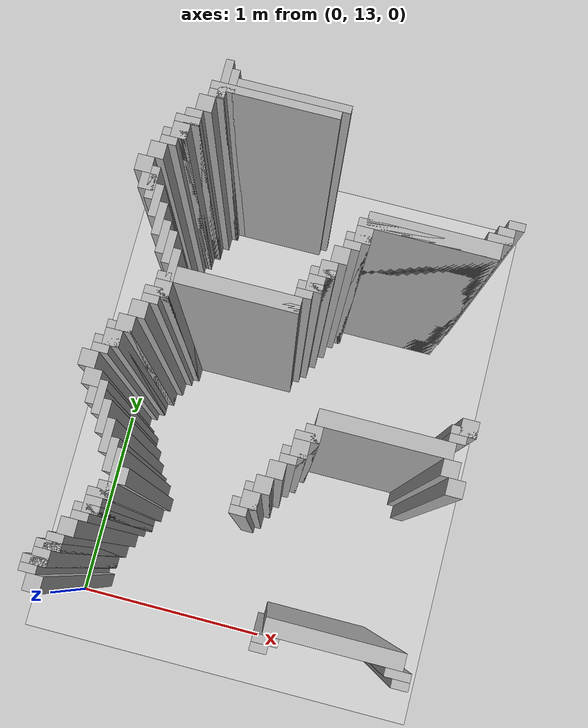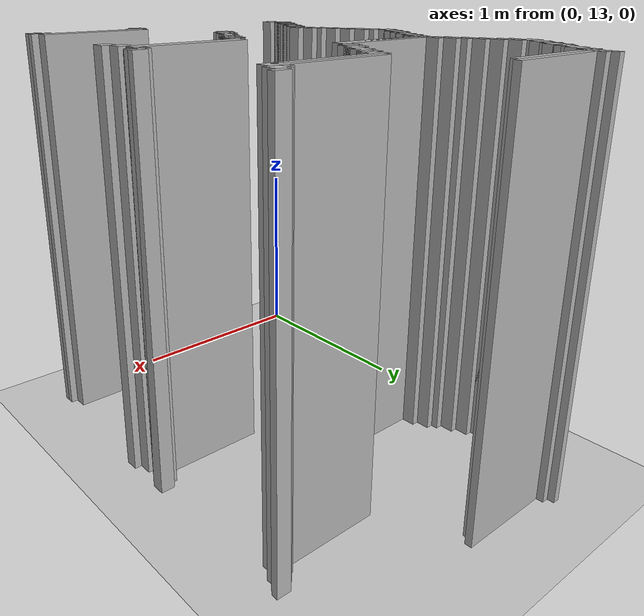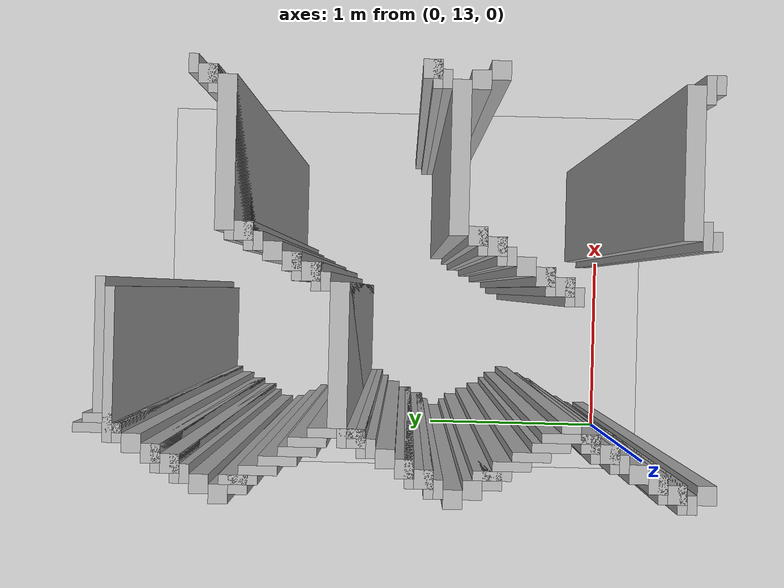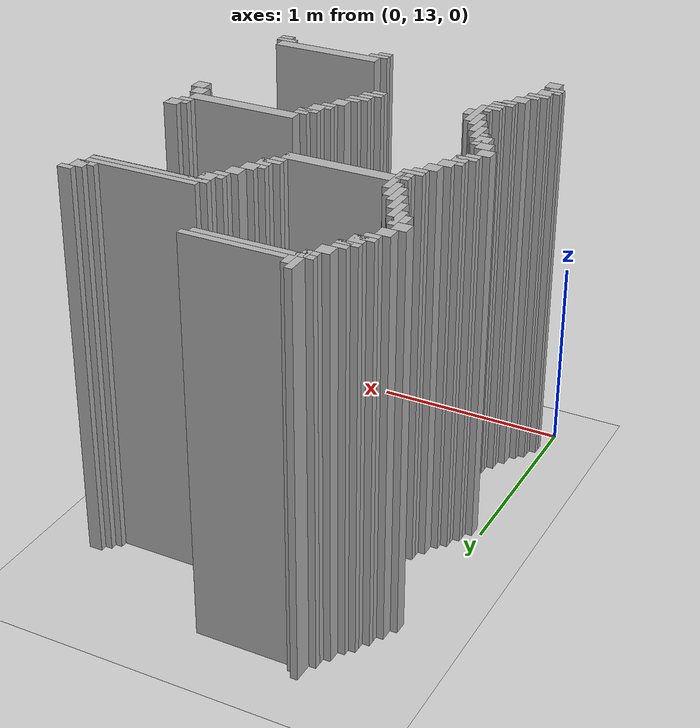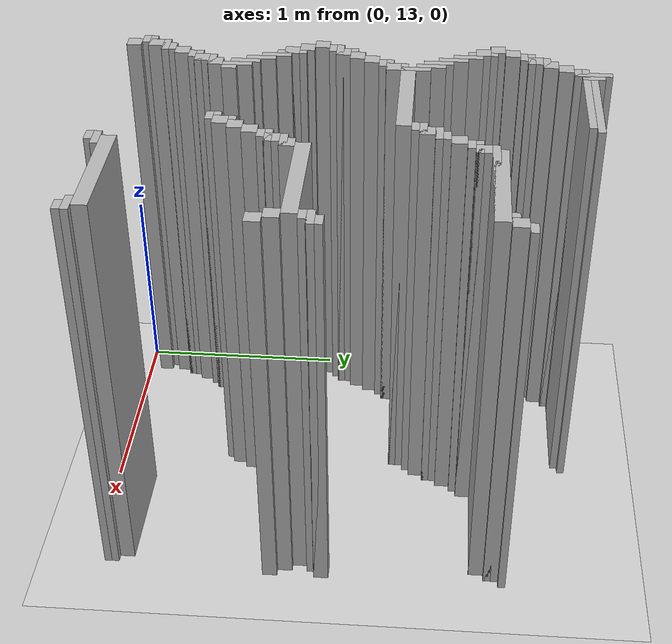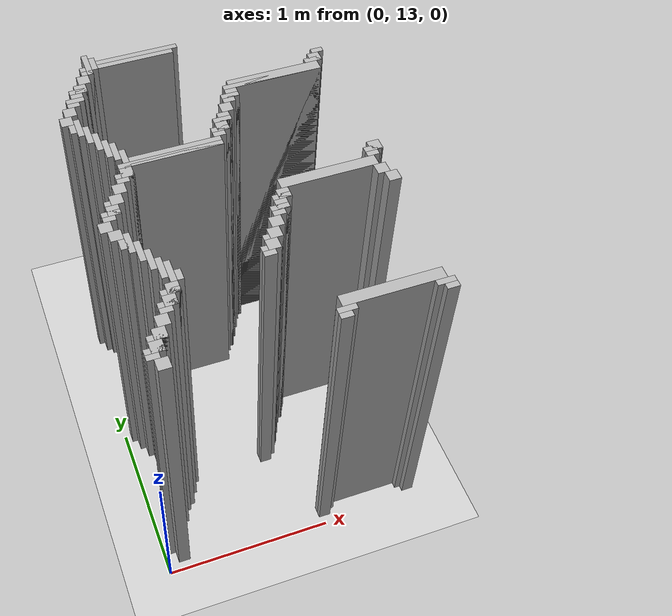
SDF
<sdf version="1.6">
 <world name="slam_world">
  <model name="ground_plane">
   <static>true</static>
   <link name="link">
    <collision name="collision">
     <geometry><plane><normal>0 0 1</normal><size>100 100</size></plane></geometry>
    </collision>
    <visual name="visual">
     <geometry><plane><normal>0 0 1</normal><size>100 100</size></plane></geometry>
     <material>
      <ambient>0.8 0.8 0.8 1</ambient>
      <diffuse>0.8 0.8 0.8 1</diffuse>
      <specular>0.8 0.8 0.8 1</specular>
     </material>
    </visual>
   </link>
  </model>
  <model name="wall_688">
   <static>true</static>
   <pose>0.29582366589327147 15.261020881670532 1.0 0 0 0</pose>
   <link name="link">
    <collision name="collision">
     <geometry><box><size>0.03480278422273782 0.17401392111368907 2.0</size></box></geometry>
    </collision>
    <visual name="visual">
     <geometry><box><size>0.03480278422273782 0.17401392111368907 2.0</size></box></geometry>
     <material><ambient>0.5 0.5 0.5 1</ambient><diffuse>0.7 0.7 0.7 1</diffuse></material>
    </visual>
   </link>
  </model>
  <model name="wall_704">
   <static>true</static>
   <pose>0.3306264501160093 15.261020881670532 1.0 0 0 0</pose>
   <link name="link">
    <collision name="collision">
     <geometry><box><size>0.03480278422273782 0.10440835266821345 2.0</size></box></geometry>
    </collision>
    <visual name="visual">
     <geometry><box><size>0.03480278422273782 0.10440835266821345 2.0</size></box></geometry>
     <material><ambient>0.5 0.5 0.5 1</ambient><diffuse>0.7 0.7 0.7 1</diffuse></material>
    </visual>
   </link>
  </model>
  <model name="wall_720">
   <static>true</static>
   <pose>0.5916473317865429 15.261020881670532 1.0 0 0 0</pose>
   <link name="link">
    <collision name="collision">
     <geometry><box><size>0.4872389791183295 0.03480278422273782 2.0</size></box></geometry>
    </collision>
    <visual name="visual">
     <geometry><box><size>0.4872389791183295 0.03480278422273782 2.0</size></box></geometry>
     <material><ambient>0.5 0.5 0.5 1</ambient><diffuse>0.7 0.7 0.7 1</diffuse></material>
    </visual>
   </link>
  </model>
  <model name="wall_730">
   <static>true</static>
   <pose>0.5220417633410672 15.226218097447795 1.0 0 0 0</pose>
   <link name="link">
    <collision name="collision">
     <geometry><box><size>0.5568445475638051 0.03480278422273782 2.0</size></box></geometry>
    </collision>
    <visual name="visual">
     <geometry><box><size>0.5568445475638051 0.03480278422273782 2.0</size></box></geometry>
     <material><ambient>0.5 0.5 0.5 1</ambient><diffuse>0.7 0.7 0.7 1</diffuse></material>
    </visual>
   </link>
  </model>
  <model name="wall_746">
   <static>true</static>
   <pose>0.27842227378190254 15.191415313225058 1.0 0 0 0</pose>
   <link name="link">
    <collision name="collision">
     <geometry><box><size>0.06960556844547564 0.03480278422273782 2.0</size></box></geometry>
    </collision>
    <visual name="visual">
     <geometry><box><size>0.06960556844547564 0.03480278422273782 2.0</size></box></geometry>
     <material><ambient>0.5 0.5 0.5 1</ambient><diffuse>0.7 0.7 0.7 1</diffuse></material>
    </visual>
   </link>
  </model>
  <model name="wall_763">
   <static>true</static>
   <pose>0.24361948955916474 15.139211136890951 1.0 0 0 0</pose>
   <link name="link">
    <collision name="collision">
     <geometry><box><size>0.06960556844547564 0.06960556844547564 2.0</size></box></geometry>
    </collision>
    <visual name="visual">
     <geometry><box><size>0.06960556844547564 0.06960556844547564 2.0</size></box></geometry>
     <material><ambient>0.5 0.5 0.5 1</ambient><diffuse>0.7 0.7 0.7 1</diffuse></material>
    </visual>
   </link>
  </model>
  <model name="wall_780">
   <static>true</static>
   <pose>0.2088167053364269 15.069605568445475 1.0 0 0 0</pose>
   <link name="link">
    <collision name="collision">
     <geometry><box><size>0.06960556844547564 0.06960556844547564 2.0</size></box></geometry>
    </collision>
    <visual name="visual">
     <geometry><box><size>0.06960556844547564 0.06960556844547564 2.0</size></box></geometry>
     <material><ambient>0.5 0.5 0.5 1</ambient><diffuse>0.7 0.7 0.7 1</diffuse></material>
    </visual>
   </link>
  </model>
  <model name="wall_797">
   <static>true</static>
   <pose>0.191415313225058 15.052204176334106 1.0 0 0 0</pose>
   <link name="link">
    <collision name="collision">
     <geometry><box><size>0.10440835266821345 0.03480278422273782 2.0</size></box></geometry>
    </collision>
    <visual name="visual">
     <geometry><box><size>0.10440835266821345 0.03480278422273782 2.0</size></box></geometry>
     <material><ambient>0.5 0.5 0.5 1</ambient><diffuse>0.7 0.7 0.7 1</diffuse></material>
    </visual>
   </link>
  </model>
  <model name="wall_814">
   <static>true</static>
   <pose>0.17401392111368907 15.0 1.0 0 0 0</pose>
   <link name="link">
    <collision name="collision">
     <geometry><box><size>0.06960556844547564 0.06960556844547564 2.0</size></box></geometry>
    </collision>
    <visual name="visual">
     <geometry><box><size>0.06960556844547564 0.06960556844547564 2.0</size></box></geometry>
     <material><ambient>0.5 0.5 0.5 1</ambient><diffuse>0.7 0.7 0.7 1</diffuse></material>
    </visual>
   </link>
  </model>
  <model name="wall_824">
   <static>true</static>
   <pose>0.15661252900232017 14.982598607888631 1.0 0 0 0</pose>
   <link name="link">
    <collision name="collision">
     <geometry><box><size>0.10440835266821345 0.03480278422273782 2.0</size></box></geometry>
    </collision>
    <visual name="visual">
     <geometry><box><size>0.10440835266821345 0.03480278422273782 2.0</size></box></geometry>
     <material><ambient>0.5 0.5 0.5 1</ambient><diffuse>0.7 0.7 0.7 1</diffuse></material>
    </visual>
   </link>
  </model>
  <model name="wall_841">
   <static>true</static>
   <pose>0.13921113689095127 14.947795823665892 1.0 0 0 0</pose>
   <link name="link">
    <collision name="collision">
     <geometry><box><size>0.06960556844547564 0.03480278422273782 2.0</size></box></geometry>
    </collision>
    <visual name="visual">
     <geometry><box><size>0.06960556844547564 0.03480278422273782 2.0</size></box></geometry>
     <material><ambient>0.5 0.5 0.5 1</ambient><diffuse>0.7 0.7 0.7 1</diffuse></material>
    </visual>
   </link>
  </model>
  <model name="wall_842">
   <static>true</static>
   <pose>1.6009280742459395 14.947795823665892 1.0 0 0 0</pose>
   <link name="link">
    <collision name="collision">
     <geometry><box><size>0.06960556844547564 0.03480278422273782 2.0</size></box></geometry>
    </collision>
    <visual name="visual">
     <geometry><box><size>0.06960556844547564 0.03480278422273782 2.0</size></box></geometry>
     <material><ambient>0.5 0.5 0.5 1</ambient><diffuse>0.7 0.7 0.7 1</diffuse></material>
    </visual>
   </link>
  </model>
  <model name="wall_850">
   <static>true</static>
   <pose>0.10440835266821345 14.895591647331786 1.0 0 0 0</pose>
   <link name="link">
    <collision name="collision">
     <geometry><box><size>0.06960556844547564 0.06960556844547564 2.0</size></box></geometry>
    </collision>
    <visual name="visual">
     <geometry><box><size>0.06960556844547564 0.06960556844547564 2.0</size></box></geometry>
     <material><ambient>0.5 0.5 0.5 1</ambient><diffuse>0.7 0.7 0.7 1</diffuse></material>
    </visual>
   </link>
  </model>
  <model name="wall_851">
   <static>true</static>
   <pose>1.5661252900232019 14.895591647331786 1.0 0 0 0</pose>
   <link name="link">
    <collision name="collision">
     <geometry><box><size>0.06960556844547564 0.06960556844547564 2.0</size></box></geometry>
    </collision>
    <visual name="visual">
     <geometry><box><size>0.06960556844547564 0.06960556844547564 2.0</size></box></geometry>
     <material><ambient>0.5 0.5 0.5 1</ambient><diffuse>0.7 0.7 0.7 1</diffuse></material>
    </visual>
   </link>
  </model>
  <model name="wall_867">
   <static>true</static>
   <pose>1.548723897911833 14.878190255220417 1.0 0 0 0</pose>
   <link name="link">
    <collision name="collision">
     <geometry><box><size>0.10440835266821345 0.03480278422273782 2.0</size></box></geometry>
    </collision>
    <visual name="visual">
     <geometry><box><size>0.10440835266821345 0.03480278422273782 2.0</size></box></geometry>
     <material><ambient>0.5 0.5 0.5 1</ambient><diffuse>0.7 0.7 0.7 1</diffuse></material>
    </visual>
   </link>
  </model>
  <model name="wall_874">
   <static>true</static>
   <pose>0.06960556844547564 14.825986078886311 1.0 0 0 0</pose>
   <link name="link">
    <collision name="collision">
     <geometry><box><size>0.06960556844547564 0.06960556844547564 2.0</size></box></geometry>
    </collision>
    <visual name="visual">
     <geometry><box><size>0.06960556844547564 0.06960556844547564 2.0</size></box></geometry>
     <material><ambient>0.5 0.5 0.5 1</ambient><diffuse>0.7 0.7 0.7 1</diffuse></material>
    </visual>
   </link>
  </model>
  <model name="wall_875">
   <static>true</static>
   <pose>1.2877030162412992 14.825986078886311 1.0 0 0 0</pose>
   <link name="link">
    <collision name="collision">
     <geometry><box><size>0.5568445475638051 0.06960556844547564 2.0</size></box></geometry>
    </collision>
    <visual name="visual">
     <geometry><box><size>0.5568445475638051 0.06960556844547564 2.0</size></box></geometry>
     <material><ambient>0.5 0.5 0.5 1</ambient><diffuse>0.7 0.7 0.7 1</diffuse></material>
    </visual>
   </link>
  </model>
  <model name="wall_890">
   <static>true</static>
   <pose>0.12180974477958237 14.756380510440835 1.0 0 0 0</pose>
   <link name="link">
    <collision name="collision">
     <geometry><box><size>0.03480278422273782 0.13921113689095127 2.0</size></box></geometry>
    </collision>
    <visual name="visual">
     <geometry><box><size>0.03480278422273782 0.13921113689095127 2.0</size></box></geometry>
     <material><ambient>0.5 0.5 0.5 1</ambient><diffuse>0.7 0.7 0.7 1</diffuse></material>
    </visual>
   </link>
  </model>
  <model name="wall_891">
   <static>true</static>
   <pose>1.2703016241299303 14.80858468677494 1.0 0 0 0</pose>
   <link name="link">
    <collision name="collision">
     <geometry><box><size>0.5916473317865429 0.03480278422273782 2.0</size></box></geometry>
    </collision>
    <visual name="visual">
     <geometry><box><size>0.5916473317865429 0.03480278422273782 2.0</size></box></geometry>
     <material><ambient>0.5 0.5 0.5 1</ambient><diffuse>0.7 0.7 0.7 1</diffuse></material>
    </visual>
   </link>
  </model>
  <model name="wall_903">
   <static>true</static>
   <pose>0.10440835266821345 14.756380510440835 1.0 0 0 0</pose>
   <link name="link">
    <collision name="collision">
     <geometry><box><size>0.06960556844547564 0.06960556844547564 2.0</size></box></geometry>
    </collision>
    <visual name="visual">
     <geometry><box><size>0.06960556844547564 0.06960556844547564 2.0</size></box></geometry>
     <material><ambient>0.5 0.5 0.5 1</ambient><diffuse>0.7 0.7 0.7 1</diffuse></material>
    </visual>
   </link>
  </model>
  <model name="wall_904">
   <static>true</static>
   <pose>1.0092807424593968 14.756380510440835 1.0 0 0 0</pose>
   <link name="link">
    <collision name="collision">
     <geometry><box><size>0.06960556844547564 0.06960556844547564 2.0</size></box></geometry>
    </collision>
    <visual name="visual">
     <geometry><box><size>0.06960556844547564 0.06960556844547564 2.0</size></box></geometry>
     <material><ambient>0.5 0.5 0.5 1</ambient><diffuse>0.7 0.7 0.7 1</diffuse></material>
    </visual>
   </link>
  </model>
  <model name="wall_918">
   <static>true</static>
   <pose>0.15661252900232017 14.68677494199536 1.0 0 0 0</pose>
   <link name="link">
    <collision name="collision">
     <geometry><box><size>0.03480278422273782 0.13921113689095127 2.0</size></box></geometry>
    </collision>
    <visual name="visual">
     <geometry><box><size>0.03480278422273782 0.13921113689095127 2.0</size></box></geometry>
     <material><ambient>0.5 0.5 0.5 1</ambient><diffuse>0.7 0.7 0.7 1</diffuse></material>
    </visual>
   </link>
  </model>
  <model name="wall_919">
   <static>true</static>
   <pose>0.9918793503480278 14.738979118329466 1.0 0 0 0</pose>
   <link name="link">
    <collision name="collision">
     <geometry><box><size>0.10440835266821345 0.03480278422273782 2.0</size></box></geometry>
    </collision>
    <visual name="visual">
     <geometry><box><size>0.10440835266821345 0.03480278422273782 2.0</size></box></geometry>
     <material><ambient>0.5 0.5 0.5 1</ambient><diffuse>0.7 0.7 0.7 1</diffuse></material>
    </visual>
   </link>
  </model>
  <model name="wall_933">
   <static>true</static>
   <pose>0.974477958236659 14.704176334106728 1.0 0 0 0</pose>
   <link name="link">
    <collision name="collision">
     <geometry><box><size>0.06960556844547564 0.03480278422273782 2.0</size></box></geometry>
    </collision>
    <visual name="visual">
     <geometry><box><size>0.06960556844547564 0.03480278422273782 2.0</size></box></geometry>
     <material><ambient>0.5 0.5 0.5 1</ambient><diffuse>0.7 0.7 0.7 1</diffuse></material>
    </visual>
   </link>
  </model>
  <model name="wall_941">
   <static>true</static>
   <pose>0.191415313225058 14.617169373549883 1.0 0 0 0</pose>
   <link name="link">
    <collision name="collision">
     <geometry><box><size>0.03480278422273782 0.13921113689095127 2.0</size></box></geometry>
    </collision>
    <visual name="visual">
     <geometry><box><size>0.03480278422273782 0.13921113689095127 2.0</size></box></geometry>
     <material><ambient>0.5 0.5 0.5 1</ambient><diffuse>0.7 0.7 0.7 1</diffuse></material>
    </visual>
   </link>
  </model>
  <model name="wall_942">
   <static>true</static>
   <pose>0.9396751740139211 14.65197215777262 1.0 0 0 0</pose>
   <link name="link">
    <collision name="collision">
     <geometry><box><size>0.06960556844547564 0.06960556844547564 2.0</size></box></geometry>
    </collision>
    <visual name="visual">
     <geometry><box><size>0.06960556844547564 0.06960556844547564 2.0</size></box></geometry>
     <material><ambient>0.5 0.5 0.5 1</ambient><diffuse>0.7 0.7 0.7 1</diffuse></material>
    </visual>
   </link>
  </model>
  <model name="wall_956">
   <static>true</static>
   <pose>0.2262180974477958 14.547563805104408 1.0 0 0 0</pose>
   <link name="link">
    <collision name="collision">
     <geometry><box><size>0.03480278422273782 0.13921113689095127 2.0</size></box></geometry>
    </collision>
    <visual name="visual">
     <geometry><box><size>0.03480278422273782 0.13921113689095127 2.0</size></box></geometry>
     <material><ambient>0.5 0.5 0.5 1</ambient><diffuse>0.7 0.7 0.7 1</diffuse></material>
    </visual>
   </link>
  </model>
  <model name="wall_957">
   <static>true</static>
   <pose>0.9048723897911832 14.582366589327146 1.0 0 0 0</pose>
   <link name="link">
    <collision name="collision">
     <geometry><box><size>0.06960556844547564 0.06960556844547564 2.0</size></box></geometry>
    </collision>
    <visual name="visual">
     <geometry><box><size>0.06960556844547564 0.06960556844547564 2.0</size></box></geometry>
     <material><ambient>0.5 0.5 0.5 1</ambient><diffuse>0.7 0.7 0.7 1</diffuse></material>
    </visual>
   </link>
  </model>
  <model name="wall_971">
   <static>true</static>
   <pose>0.2610208816705336 14.512761020881669 1.0 0 0 0</pose>
   <link name="link">
    <collision name="collision">
     <geometry><box><size>0.03480278422273782 0.13921113689095127 2.0</size></box></geometry>
    </collision>
    <visual name="visual">
     <geometry><box><size>0.03480278422273782 0.13921113689095127 2.0</size></box></geometry>
     <material><ambient>0.5 0.5 0.5 1</ambient><diffuse>0.7 0.7 0.7 1</diffuse></material>
    </visual>
   </link>
  </model>
  <model name="wall_972">
   <static>true</static>
   <pose>0.8874709976798143 14.564965197215777 1.0 0 0 0</pose>
   <link name="link">
    <collision name="collision">
     <geometry><box><size>0.10440835266821345 0.03480278422273782 2.0</size></box></geometry>
    </collision>
    <visual name="visual">
     <geometry><box><size>0.10440835266821345 0.03480278422273782 2.0</size></box></geometry>
     <material><ambient>0.5 0.5 0.5 1</ambient><diffuse>0.7 0.7 0.7 1</diffuse></material>
    </visual>
   </link>
  </model>
  <model name="wall_986">
   <static>true</static>
   <pose>0.8700696055684455 14.512761020881669 1.0 0 0 0</pose>
   <link name="link">
    <collision name="collision">
     <geometry><box><size>0.06960556844547564 0.06960556844547564 2.0</size></box></geometry>
    </collision>
    <visual name="visual">
     <geometry><box><size>0.06960556844547564 0.06960556844547564 2.0</size></box></geometry>
     <material><ambient>0.5 0.5 0.5 1</ambient><diffuse>0.7 0.7 0.7 1</diffuse></material>
    </visual>
   </link>
  </model>
  <model name="wall_992">
   <static>true</static>
   <pose>0.29582366589327147 14.408352668213457 1.0 0 0 0</pose>
   <link name="link">
    <collision name="collision">
     <geometry><box><size>0.03480278422273782 0.2088167053364269 2.0</size></box></geometry>
    </collision>
    <visual name="visual">
     <geometry><box><size>0.03480278422273782 0.2088167053364269 2.0</size></box></geometry>
     <material><ambient>0.5 0.5 0.5 1</ambient><diffuse>0.7 0.7 0.7 1</diffuse></material>
    </visual>
   </link>
  </model>
  <model name="wall_993">
   <static>true</static>
   <pose>0.8526682134570766 14.4953596287703 1.0 0 0 0</pose>
   <link name="link">
    <collision name="collision">
     <geometry><box><size>0.10440835266821345 0.03480278422273782 2.0</size></box></geometry>
    </collision>
    <visual name="visual">
     <geometry><box><size>0.10440835266821345 0.03480278422273782 2.0</size></box></geometry>
     <material><ambient>0.5 0.5 0.5 1</ambient><diffuse>0.7 0.7 0.7 1</diffuse></material>
    </visual>
   </link>
  </model>
  <model name="wall_1007">
   <static>true</static>
   <pose>0.8352668213457076 14.460556844547563 1.0 0 0 0</pose>
   <link name="link">
    <collision name="collision">
     <geometry><box><size>0.06960556844547564 0.03480278422273782 2.0</size></box></geometry>
    </collision>
    <visual name="visual">
     <geometry><box><size>0.06960556844547564 0.03480278422273782 2.0</size></box></geometry>
     <material><ambient>0.5 0.5 0.5 1</ambient><diffuse>0.7 0.7 0.7 1</diffuse></material>
    </visual>
   </link>
  </model>
  <model name="wall_1013">
   <static>true</static>
   <pose>0.574245939675174 14.408352668213457 1.0 0 0 0</pose>
   <link name="link">
    <collision name="collision">
     <geometry><box><size>0.5220417633410672 0.06960556844547564 2.0</size></box></geometry>
    </collision>
    <visual name="visual">
     <geometry><box><size>0.5220417633410672 0.06960556844547564 2.0</size></box></geometry>
     <material><ambient>0.5 0.5 0.5 1</ambient><diffuse>0.7 0.7 0.7 1</diffuse></material>
    </visual>
   </link>
  </model>
  <model name="wall_1026">
   <static>true</static>
   <pose>0.5394431554524362 14.390951276102088 1.0 0 0 0</pose>
   <link name="link">
    <collision name="collision">
     <geometry><box><size>0.5916473317865429 0.03480278422273782 2.0</size></box></geometry>
    </collision>
    <visual name="visual">
     <geometry><box><size>0.5916473317865429 0.03480278422273782 2.0</size></box></geometry>
     <material><ambient>0.5 0.5 0.5 1</ambient><diffuse>0.7 0.7 0.7 1</diffuse></material>
    </visual>
   </link>
  </model>
  <model name="wall_1038">
   <static>true</static>
   <pose>0.27842227378190254 14.33874709976798 1.0 0 0 0</pose>
   <link name="link">
    <collision name="collision">
     <geometry><box><size>0.06960556844547564 0.06960556844547564 2.0</size></box></geometry>
    </collision>
    <visual name="visual">
     <geometry><box><size>0.06960556844547564 0.06960556844547564 2.0</size></box></geometry>
     <material><ambient>0.5 0.5 0.5 1</ambient><diffuse>0.7 0.7 0.7 1</diffuse></material>
    </visual>
   </link>
  </model>
  <model name="wall_1051">
   <static>true</static>
   <pose>0.2610208816705336 14.321345707656612 1.0 0 0 0</pose>
   <link name="link">
    <collision name="collision">
     <geometry><box><size>0.10440835266821345 0.03480278422273782 2.0</size></box></geometry>
    </collision>
    <visual name="visual">
     <geometry><box><size>0.10440835266821345 0.03480278422273782 2.0</size></box></geometry>
     <material><ambient>0.5 0.5 0.5 1</ambient><diffuse>0.7 0.7 0.7 1</diffuse></material>
    </visual>
   </link>
  </model>
  <model name="wall_1064">
   <static>true</static>
   <pose>0.24361948955916474 14.286542923433874 1.0 0 0 0</pose>
   <link name="link">
    <collision name="collision">
     <geometry><box><size>0.06960556844547564 0.03480278422273782 2.0</size></box></geometry>
    </collision>
    <visual name="visual">
     <geometry><box><size>0.06960556844547564 0.03480278422273782 2.0</size></box></geometry>
     <material><ambient>0.5 0.5 0.5 1</ambient><diffuse>0.7 0.7 0.7 1</diffuse></material>
    </visual>
   </link>
  </model>
  <model name="wall_1072">
   <static>true</static>
   <pose>0.2088167053364269 14.234338747099768 1.0 0 0 0</pose>
   <link name="link">
    <collision name="collision">
     <geometry><box><size>0.06960556844547564 0.06960556844547564 2.0</size></box></geometry>
    </collision>
    <visual name="visual">
     <geometry><box><size>0.06960556844547564 0.06960556844547564 2.0</size></box></geometry>
     <material><ambient>0.5 0.5 0.5 1</ambient><diffuse>0.7 0.7 0.7 1</diffuse></material>
    </visual>
   </link>
  </model>
  <model name="wall_1085">
   <static>true</static>
   <pose>0.17401392111368907 14.164733178654291 1.0 0 0 0</pose>
   <link name="link">
    <collision name="collision">
     <geometry><box><size>0.06960556844547564 0.06960556844547564 2.0</size></box></geometry>
    </collision>
    <visual name="visual">
     <geometry><box><size>0.06960556844547564 0.06960556844547564 2.0</size></box></geometry>
     <material><ambient>0.5 0.5 0.5 1</ambient><diffuse>0.7 0.7 0.7 1</diffuse></material>
    </visual>
   </link>
  </model>
  <model name="wall_1098">
   <static>true</static>
   <pose>0.15661252900232017 14.147331786542923 1.0 0 0 0</pose>
   <link name="link">
    <collision name="collision">
     <geometry><box><size>0.10440835266821345 0.03480278422273782 2.0</size></box></geometry>
    </collision>
    <visual name="visual">
     <geometry><box><size>0.10440835266821345 0.03480278422273782 2.0</size></box></geometry>
     <material><ambient>0.5 0.5 0.5 1</ambient><diffuse>0.7 0.7 0.7 1</diffuse></material>
    </visual>
   </link>
  </model>
  <model name="wall_1111">
   <static>true</static>
   <pose>0.13921113689095127 14.095127610208817 1.0 0 0 0</pose>
   <link name="link">
    <collision name="collision">
     <geometry><box><size>0.06960556844547564 0.06960556844547564 2.0</size></box></geometry>
    </collision>
    <visual name="visual">
     <geometry><box><size>0.06960556844547564 0.06960556844547564 2.0</size></box></geometry>
     <material><ambient>0.5 0.5 0.5 1</ambient><diffuse>0.7 0.7 0.7 1</diffuse></material>
    </visual>
   </link>
  </model>
  <model name="wall_1112">
   <static>true</static>
   <pose>1.6009280742459395 14.095127610208817 1.0 0 0 0</pose>
   <link name="link">
    <collision name="collision">
     <geometry><box><size>0.06960556844547564 0.06960556844547564 2.0</size></box></geometry>
    </collision>
    <visual name="visual">
     <geometry><box><size>0.06960556844547564 0.06960556844547564 2.0</size></box></geometry>
     <material><ambient>0.5 0.5 0.5 1</ambient><diffuse>0.7 0.7 0.7 1</diffuse></material>
    </visual>
   </link>
  </model>
  <model name="wall_1118">
   <static>true</static>
   <pose>0.12180974477958237 14.077726218097448 1.0 0 0 0</pose>
   <link name="link">
    <collision name="collision">
     <geometry><box><size>0.10440835266821345 0.03480278422273782 2.0</size></box></geometry>
    </collision>
    <visual name="visual">
     <geometry><box><size>0.10440835266821345 0.03480278422273782 2.0</size></box></geometry>
     <material><ambient>0.5 0.5 0.5 1</ambient><diffuse>0.7 0.7 0.7 1</diffuse></material>
    </visual>
   </link>
  </model>
  <model name="wall_1119">
   <static>true</static>
   <pose>1.5835266821345706 14.077726218097448 1.0 0 0 0</pose>
   <link name="link">
    <collision name="collision">
     <geometry><box><size>0.10440835266821345 0.03480278422273782 2.0</size></box></geometry>
    </collision>
    <visual name="visual">
     <geometry><box><size>0.10440835266821345 0.03480278422273782 2.0</size></box></geometry>
     <material><ambient>0.5 0.5 0.5 1</ambient><diffuse>0.7 0.7 0.7 1</diffuse></material>
    </visual>
   </link>
  </model>
  <model name="wall_1131">
   <static>true</static>
   <pose>0.10440835266821345 14.042923433874709 1.0 0 0 0</pose>
   <link name="link">
    <collision name="collision">
     <geometry><box><size>0.06960556844547564 0.03480278422273782 2.0</size></box></geometry>
    </collision>
    <visual name="visual">
     <geometry><box><size>0.06960556844547564 0.03480278422273782 2.0</size></box></geometry>
     <material><ambient>0.5 0.5 0.5 1</ambient><diffuse>0.7 0.7 0.7 1</diffuse></material>
    </visual>
   </link>
  </model>
  <model name="wall_1132">
   <static>true</static>
   <pose>1.5661252900232019 14.042923433874709 1.0 0 0 0</pose>
   <link name="link">
    <collision name="collision">
     <geometry><box><size>0.06960556844547564 0.03480278422273782 2.0</size></box></geometry>
    </collision>
    <visual name="visual">
     <geometry><box><size>0.06960556844547564 0.03480278422273782 2.0</size></box></geometry>
     <material><ambient>0.5 0.5 0.5 1</ambient><diffuse>0.7 0.7 0.7 1</diffuse></material>
    </visual>
   </link>
  </model>
  <model name="wall_1138">
   <static>true</static>
   <pose>0.06960556844547564 13.990719257540603 1.0 0 0 0</pose>
   <link name="link">
    <collision name="collision">
     <geometry><box><size>0.06960556844547564 0.06960556844547564 2.0</size></box></geometry>
    </collision>
    <visual name="visual">
     <geometry><box><size>0.06960556844547564 0.06960556844547564 2.0</size></box></geometry>
     <material><ambient>0.5 0.5 0.5 1</ambient><diffuse>0.7 0.7 0.7 1</diffuse></material>
    </visual>
   </link>
  </model>
  <model name="wall_1139">
   <static>true</static>
   <pose>1.2877030162412992 13.990719257540603 1.0 0 0 0</pose>
   <link name="link">
    <collision name="collision">
     <geometry><box><size>0.5568445475638051 0.06960556844547564 2.0</size></box></geometry>
    </collision>
    <visual name="visual">
     <geometry><box><size>0.5568445475638051 0.06960556844547564 2.0</size></box></geometry>
     <material><ambient>0.5 0.5 0.5 1</ambient><diffuse>0.7 0.7 0.7 1</diffuse></material>
    </visual>
   </link>
  </model>
  <model name="wall_1152">
   <static>true</static>
   <pose>0.10440835266821345 13.921113689095128 1.0 0 0 0</pose>
   <link name="link">
    <collision name="collision">
     <geometry><box><size>0.06960556844547564 0.06960556844547564 2.0</size></box></geometry>
    </collision>
    <visual name="visual">
     <geometry><box><size>0.06960556844547564 0.06960556844547564 2.0</size></box></geometry>
     <material><ambient>0.5 0.5 0.5 1</ambient><diffuse>0.7 0.7 0.7 1</diffuse></material>
    </visual>
   </link>
  </model>
  <model name="wall_1153">
   <static>true</static>
   <pose>1.0092807424593968 13.921113689095128 1.0 0 0 0</pose>
   <link name="link">
    <collision name="collision">
     <geometry><box><size>0.06960556844547564 0.06960556844547564 2.0</size></box></geometry>
    </collision>
    <visual name="visual">
     <geometry><box><size>0.06960556844547564 0.06960556844547564 2.0</size></box></geometry>
     <material><ambient>0.5 0.5 0.5 1</ambient><diffuse>0.7 0.7 0.7 1</diffuse></material>
    </visual>
   </link>
  </model>
  <model name="wall_1154">
   <static>true</static>
   <pose>1.5661252900232019 13.921113689095128 1.0 0 0 0</pose>
   <link name="link">
    <collision name="collision">
     <geometry><box><size>0.06960556844547564 0.06960556844547564 2.0</size></box></geometry>
    </collision>
    <visual name="visual">
     <geometry><box><size>0.06960556844547564 0.06960556844547564 2.0</size></box></geometry>
     <material><ambient>0.5 0.5 0.5 1</ambient><diffuse>0.7 0.7 0.7 1</diffuse></material>
    </visual>
   </link>
  </model>
  <model name="wall_1168">
   <static>true</static>
   <pose>0.15661252900232017 13.851508120649651 1.0 0 0 0</pose>
   <link name="link">
    <collision name="collision">
     <geometry><box><size>0.03480278422273782 0.13921113689095127 2.0</size></box></geometry>
    </collision>
    <visual name="visual">
     <geometry><box><size>0.03480278422273782 0.13921113689095127 2.0</size></box></geometry>
     <material><ambient>0.5 0.5 0.5 1</ambient><diffuse>0.7 0.7 0.7 1</diffuse></material>
    </visual>
   </link>
  </model>
  <model name="wall_1169">
   <static>true</static>
   <pose>0.9918793503480278 13.903712296983759 1.0 0 0 0</pose>
   <link name="link">
    <collision name="collision">
     <geometry><box><size>0.10440835266821345 0.03480278422273782 2.0</size></box></geometry>
    </collision>
    <visual name="visual">
     <geometry><box><size>0.10440835266821345 0.03480278422273782 2.0</size></box></geometry>
     <material><ambient>0.5 0.5 0.5 1</ambient><diffuse>0.7 0.7 0.7 1</diffuse></material>
    </visual>
   </link>
  </model>
  <model name="wall_1184">
   <static>true</static>
   <pose>0.13921113689095127 13.851508120649651 1.0 0 0 0</pose>
   <link name="link">
    <collision name="collision">
     <geometry><box><size>0.06960556844547564 0.06960556844547564 2.0</size></box></geometry>
    </collision>
    <visual name="visual">
     <geometry><box><size>0.06960556844547564 0.06960556844547564 2.0</size></box></geometry>
     <material><ambient>0.5 0.5 0.5 1</ambient><diffuse>0.7 0.7 0.7 1</diffuse></material>
    </visual>
   </link>
  </model>
  <model name="wall_1185">
   <static>true</static>
   <pose>0.974477958236659 13.851508120649651 1.0 0 0 0</pose>
   <link name="link">
    <collision name="collision">
     <geometry><box><size>0.06960556844547564 0.06960556844547564 2.0</size></box></geometry>
    </collision>
    <visual name="visual">
     <geometry><box><size>0.06960556844547564 0.06960556844547564 2.0</size></box></geometry>
     <material><ambient>0.5 0.5 0.5 1</ambient><diffuse>0.7 0.7 0.7 1</diffuse></material>
    </visual>
   </link>
  </model>
  <model name="wall_1186">
   <static>true</static>
   <pose>1.6009280742459395 13.851508120649651 1.0 0 0 0</pose>
   <link name="link">
    <collision name="collision">
     <geometry><box><size>0.06960556844547564 0.06960556844547564 2.0</size></box></geometry>
    </collision>
    <visual name="visual">
     <geometry><box><size>0.06960556844547564 0.06960556844547564 2.0</size></box></geometry>
     <material><ambient>0.5 0.5 0.5 1</ambient><diffuse>0.7 0.7 0.7 1</diffuse></material>
    </visual>
   </link>
  </model>
  <model name="wall_1200">
   <static>true</static>
   <pose>0.191415313225058 13.781902552204176 1.0 0 0 0</pose>
   <link name="link">
    <collision name="collision">
     <geometry><box><size>0.03480278422273782 0.13921113689095127 2.0</size></box></geometry>
    </collision>
    <visual name="visual">
     <geometry><box><size>0.03480278422273782 0.13921113689095127 2.0</size></box></geometry>
     <material><ambient>0.5 0.5 0.5 1</ambient><diffuse>0.7 0.7 0.7 1</diffuse></material>
    </visual>
   </link>
  </model>
  <model name="wall_1201">
   <static>true</static>
   <pose>0.95707656612529 13.834106728538282 1.0 0 0 0</pose>
   <link name="link">
    <collision name="collision">
     <geometry><box><size>0.10440835266821345 0.03480278422273782 2.0</size></box></geometry>
    </collision>
    <visual name="visual">
     <geometry><box><size>0.10440835266821345 0.03480278422273782 2.0</size></box></geometry>
     <material><ambient>0.5 0.5 0.5 1</ambient><diffuse>0.7 0.7 0.7 1</diffuse></material>
    </visual>
   </link>
  </model>
  <model name="wall_1216">
   <static>true</static>
   <pose>0.9396751740139211 13.799303944315545 1.0 0 0 0</pose>
   <link name="link">
    <collision name="collision">
     <geometry><box><size>0.06960556844547564 0.03480278422273782 2.0</size></box></geometry>
    </collision>
    <visual name="visual">
     <geometry><box><size>0.06960556844547564 0.03480278422273782 2.0</size></box></geometry>
     <material><ambient>0.5 0.5 0.5 1</ambient><diffuse>0.7 0.7 0.7 1</diffuse></material>
    </visual>
   </link>
  </model>
  <model name="wall_1224">
   <static>true</static>
   <pose>0.2262180974477958 13.7122969837587 1.0 0 0 0</pose>
   <link name="link">
    <collision name="collision">
     <geometry><box><size>0.03480278422273782 0.13921113689095127 2.0</size></box></geometry>
    </collision>
    <visual name="visual">
     <geometry><box><size>0.03480278422273782 0.13921113689095127 2.0</size></box></geometry>
     <material><ambient>0.5 0.5 0.5 1</ambient><diffuse>0.7 0.7 0.7 1</diffuse></material>
    </visual>
   </link>
  </model>
  <model name="wall_1225">
   <static>true</static>
   <pose>0.9048723897911832 13.747099767981437 1.0 0 0 0</pose>
   <link name="link">
    <collision name="collision">
     <geometry><box><size>0.06960556844547564 0.06960556844547564 2.0</size></box></geometry>
    </collision>
    <visual name="visual">
     <geometry><box><size>0.06960556844547564 0.06960556844547564 2.0</size></box></geometry>
     <material><ambient>0.5 0.5 0.5 1</ambient><diffuse>0.7 0.7 0.7 1</diffuse></material>
    </visual>
   </link>
  </model>
  <model name="wall_1240">
   <static>true</static>
   <pose>0.2610208816705336 13.642691415313225 1.0 0 0 0</pose>
   <link name="link">
    <collision name="collision">
     <geometry><box><size>0.03480278422273782 0.13921113689095127 2.0</size></box></geometry>
    </collision>
    <visual name="visual">
     <geometry><box><size>0.03480278422273782 0.13921113689095127 2.0</size></box></geometry>
     <material><ambient>0.5 0.5 0.5 1</ambient><diffuse>0.7 0.7 0.7 1</diffuse></material>
    </visual>
   </link>
  </model>
  <model name="wall_1241">
   <static>true</static>
   <pose>0.8700696055684455 13.677494199535962 1.0 0 0 0</pose>
   <link name="link">
    <collision name="collision">
     <geometry><box><size>0.06960556844547564 0.06960556844547564 2.0</size></box></geometry>
    </collision>
    <visual name="visual">
     <geometry><box><size>0.06960556844547564 0.06960556844547564 2.0</size></box></geometry>
     <material><ambient>0.5 0.5 0.5 1</ambient><diffuse>0.7 0.7 0.7 1</diffuse></material>
    </visual>
   </link>
  </model>
  <model name="wall_1256">
   <static>true</static>
   <pose>0.29582366589327147 13.573085846867748 1.0 0 0 0</pose>
   <link name="link">
    <collision name="collision">
     <geometry><box><size>0.03480278422273782 0.2088167053364269 2.0</size></box></geometry>
    </collision>
    <visual name="visual">
     <geometry><box><size>0.03480278422273782 0.2088167053364269 2.0</size></box></geometry>
     <material><ambient>0.5 0.5 0.5 1</ambient><diffuse>0.7 0.7 0.7 1</diffuse></material>
    </visual>
   </link>
  </model>
  <model name="wall_1257">
   <static>true</static>
   <pose>0.8526682134570766 13.660092807424594 1.0 0 0 0</pose>
   <link name="link">
    <collision name="collision">
     <geometry><box><size>0.10440835266821345 0.03480278422273782 2.0</size></box></geometry>
    </collision>
    <visual name="visual">
     <geometry><box><size>0.10440835266821345 0.03480278422273782 2.0</size></box></geometry>
     <material><ambient>0.5 0.5 0.5 1</ambient><diffuse>0.7 0.7 0.7 1</diffuse></material>
    </visual>
   </link>
  </model>
  <model name="wall_1272">
   <static>true</static>
   <pose>0.8352668213457076 13.607888631090487 1.0 0 0 0</pose>
   <link name="link">
    <collision name="collision">
     <geometry><box><size>0.06960556844547564 0.06960556844547564 2.0</size></box></geometry>
    </collision>
    <visual name="visual">
     <geometry><box><size>0.06960556844547564 0.06960556844547564 2.0</size></box></geometry>
     <material><ambient>0.5 0.5 0.5 1</ambient><diffuse>0.7 0.7 0.7 1</diffuse></material>
    </visual>
   </link>
  </model>
  <model name="wall_1280">
   <static>true</static>
   <pose>0.3306264501160093 13.573085846867748 1.0 0 0 0</pose>
   <link name="link">
    <collision name="collision">
     <geometry><box><size>0.03480278422273782 0.06960556844547564 2.0</size></box></geometry>
    </collision>
    <visual name="visual">
     <geometry><box><size>0.03480278422273782 0.06960556844547564 2.0</size></box></geometry>
     <material><ambient>0.5 0.5 0.5 1</ambient><diffuse>0.7 0.7 0.7 1</diffuse></material>
    </visual>
   </link>
  </model>
  <model name="wall_1281">
   <static>true</static>
   <pose>0.8178654292343387 13.590487238979117 1.0 0 0 0</pose>
   <link name="link">
    <collision name="collision">
     <geometry><box><size>0.10440835266821345 0.03480278422273782 2.0</size></box></geometry>
    </collision>
    <visual name="visual">
     <geometry><box><size>0.10440835266821345 0.03480278422273782 2.0</size></box></geometry>
     <material><ambient>0.5 0.5 0.5 1</ambient><diffuse>0.7 0.7 0.7 1</diffuse></material>
    </visual>
   </link>
  </model>
  <model name="wall_1295">
   <static>true</static>
   <pose>0.8004640371229698 13.55568445475638 1.0 0 0 0</pose>
   <link name="link">
    <collision name="collision">
     <geometry><box><size>0.06960556844547564 0.03480278422273782 2.0</size></box></geometry>
    </collision>
    <visual name="visual">
     <geometry><box><size>0.06960556844547564 0.03480278422273782 2.0</size></box></geometry>
     <material><ambient>0.5 0.5 0.5 1</ambient><diffuse>0.7 0.7 0.7 1</diffuse></material>
    </visual>
   </link>
  </model>
  <model name="wall_1303">
   <static>true</static>
   <pose>0.27842227378190254 13.503480278422273 1.0 0 0 0</pose>
   <link name="link">
    <collision name="collision">
     <geometry><box><size>0.06960556844547564 0.06960556844547564 2.0</size></box></geometry>
    </collision>
    <visual name="visual">
     <geometry><box><size>0.06960556844547564 0.06960556844547564 2.0</size></box></geometry>
     <material><ambient>0.5 0.5 0.5 1</ambient><diffuse>0.7 0.7 0.7 1</diffuse></material>
    </visual>
   </link>
  </model>
  <model name="wall_1317">
   <static>true</static>
   <pose>0.2610208816705336 13.486078886310905 1.0 0 0 0</pose>
   <link name="link">
    <collision name="collision">
     <geometry><box><size>0.10440835266821345 0.03480278422273782 2.0</size></box></geometry>
    </collision>
    <visual name="visual">
     <geometry><box><size>0.10440835266821345 0.03480278422273782 2.0</size></box></geometry>
     <material><ambient>0.5 0.5 0.5 1</ambient><diffuse>0.7 0.7 0.7 1</diffuse></material>
    </visual>
   </link>
  </model>
  <model name="wall_1331">
   <static>true</static>
   <pose>0.24361948955916474 13.433874709976797 1.0 0 0 0</pose>
   <link name="link">
    <collision name="collision">
     <geometry><box><size>0.06960556844547564 0.06960556844547564 2.0</size></box></geometry>
    </collision>
    <visual name="visual">
     <geometry><box><size>0.06960556844547564 0.06960556844547564 2.0</size></box></geometry>
     <material><ambient>0.5 0.5 0.5 1</ambient><diffuse>0.7 0.7 0.7 1</diffuse></material>
    </visual>
   </link>
  </model>
  <model name="wall_1345">
   <static>true</static>
   <pose>0.2262180974477958 13.416473317865428 1.0 0 0 0</pose>
   <link name="link">
    <collision name="collision">
     <geometry><box><size>0.10440835266821345 0.03480278422273782 2.0</size></box></geometry>
    </collision>
    <visual name="visual">
     <geometry><box><size>0.10440835266821345 0.03480278422273782 2.0</size></box></geometry>
     <material><ambient>0.5 0.5 0.5 1</ambient><diffuse>0.7 0.7 0.7 1</diffuse></material>
    </visual>
   </link>
  </model>
  <model name="wall_1359">
   <static>true</static>
   <pose>0.2088167053364269 13.38167053364269 1.0 0 0 0</pose>
   <link name="link">
    <collision name="collision">
     <geometry><box><size>0.06960556844547564 0.03480278422273782 2.0</size></box></geometry>
    </collision>
    <visual name="visual">
     <geometry><box><size>0.06960556844547564 0.03480278422273782 2.0</size></box></geometry>
     <material><ambient>0.5 0.5 0.5 1</ambient><diffuse>0.7 0.7 0.7 1</diffuse></material>
    </visual>
   </link>
  </model>
  <model name="wall_1368">
   <static>true</static>
   <pose>0.17401392111368907 13.329466357308585 1.0 0 0 0</pose>
   <link name="link">
    <collision name="collision">
     <geometry><box><size>0.06960556844547564 0.06960556844547564 2.0</size></box></geometry>
    </collision>
    <visual name="visual">
     <geometry><box><size>0.06960556844547564 0.06960556844547564 2.0</size></box></geometry>
     <material><ambient>0.5 0.5 0.5 1</ambient><diffuse>0.7 0.7 0.7 1</diffuse></material>
    </visual>
   </link>
  </model>
  <model name="wall_1382">
   <static>true</static>
   <pose>0.13921113689095127 13.259860788863108 1.0 0 0 0</pose>
   <link name="link">
    <collision name="collision">
     <geometry><box><size>0.06960556844547564 0.06960556844547564 2.0</size></box></geometry>
    </collision>
    <visual name="visual">
     <geometry><box><size>0.06960556844547564 0.06960556844547564 2.0</size></box></geometry>
     <material><ambient>0.5 0.5 0.5 1</ambient><diffuse>0.7 0.7 0.7 1</diffuse></material>
    </visual>
   </link>
  </model>
  <model name="wall_1396">
   <static>true</static>
   <pose>0.12180974477958237 13.24245939675174 1.0 0 0 0</pose>
   <link name="link">
    <collision name="collision">
     <geometry><box><size>0.10440835266821345 0.03480278422273782 2.0</size></box></geometry>
    </collision>
    <visual name="visual">
     <geometry><box><size>0.10440835266821345 0.03480278422273782 2.0</size></box></geometry>
     <material><ambient>0.5 0.5 0.5 1</ambient><diffuse>0.7 0.7 0.7 1</diffuse></material>
    </visual>
   </link>
  </model>
  <model name="wall_1410">
   <static>true</static>
   <pose>0.10440835266821345 13.190255220417633 1.0 0 0 0</pose>
   <link name="link">
    <collision name="collision">
     <geometry><box><size>0.06960556844547564 0.06960556844547564 2.0</size></box></geometry>
    </collision>
    <visual name="visual">
     <geometry><box><size>0.06960556844547564 0.06960556844547564 2.0</size></box></geometry>
     <material><ambient>0.5 0.5 0.5 1</ambient><diffuse>0.7 0.7 0.7 1</diffuse></material>
    </visual>
   </link>
  </model>
  <model name="wall_1419">
   <static>true</static>
   <pose>0.08700696055684454 13.172853828306264 1.0 0 0 0</pose>
   <link name="link">
    <collision name="collision">
     <geometry><box><size>0.10440835266821345 0.03480278422273782 2.0</size></box></geometry>
    </collision>
    <visual name="visual">
     <geometry><box><size>0.10440835266821345 0.03480278422273782 2.0</size></box></geometry>
     <material><ambient>0.5 0.5 0.5 1</ambient><diffuse>0.7 0.7 0.7 1</diffuse></material>
    </visual>
   </link>
  </model>
  <model name="wall_1420">
   <static>true</static>
   <pose>1.2877030162412992 13.155452436194896 1.0 0 0 0</pose>
   <link name="link">
    <collision name="collision">
     <geometry><box><size>0.5568445475638051 0.06960556844547564 2.0</size></box></geometry>
    </collision>
    <visual name="visual">
     <geometry><box><size>0.5568445475638051 0.06960556844547564 2.0</size></box></geometry>
     <material><ambient>0.5 0.5 0.5 1</ambient><diffuse>0.7 0.7 0.7 1</diffuse></material>
    </visual>
   </link>
  </model>
  <model name="wall_1432">
   <static>true</static>
   <pose>0.06960556844547564 13.138051044083527 1.0 0 0 0</pose>
   <link name="link">
    <collision name="collision">
     <geometry><box><size>0.06960556844547564 0.03480278422273782 2.0</size></box></geometry>
    </collision>
    <visual name="visual">
     <geometry><box><size>0.06960556844547564 0.03480278422273782 2.0</size></box></geometry>
     <material><ambient>0.5 0.5 0.5 1</ambient><diffuse>0.7 0.7 0.7 1</diffuse></material>
    </visual>
   </link>
  </model>
  <model name="wall_1441">
   <static>true</static>
   <pose>0.10440835266821345 13.085846867749419 1.0 0 0 0</pose>
   <link name="link">
    <collision name="collision">
     <geometry><box><size>0.06960556844547564 0.06960556844547564 2.0</size></box></geometry>
    </collision>
    <visual name="visual">
     <geometry><box><size>0.06960556844547564 0.06960556844547564 2.0</size></box></geometry>
     <material><ambient>0.5 0.5 0.5 1</ambient><diffuse>0.7 0.7 0.7 1</diffuse></material>
    </visual>
   </link>
  </model>
  <model name="wall_1442">
   <static>true</static>
   <pose>1.0266821345707655 13.103248259860788 1.0 0 0 0</pose>
   <link name="link">
    <collision name="collision">
     <geometry><box><size>0.10440835266821345 0.03480278422273782 2.0</size></box></geometry>
    </collision>
    <visual name="visual">
     <geometry><box><size>0.10440835266821345 0.03480278422273782 2.0</size></box></geometry>
     <material><ambient>0.5 0.5 0.5 1</ambient><diffuse>0.7 0.7 0.7 1</diffuse></material>
    </visual>
   </link>
  </model>
  <model name="wall_1443">
   <static>true</static>
   <pose>1.548723897911833 13.103248259860788 1.0 0 0 0</pose>
   <link name="link">
    <collision name="collision">
     <geometry><box><size>0.10440835266821345 0.03480278422273782 2.0</size></box></geometry>
    </collision>
    <visual name="visual">
     <geometry><box><size>0.10440835266821345 0.03480278422273782 2.0</size></box></geometry>
     <material><ambient>0.5 0.5 0.5 1</ambient><diffuse>0.7 0.7 0.7 1</diffuse></material>
    </visual>
   </link>
  </model>
  <model name="wall_1453">
   <static>true</static>
   <pose>1.0092807424593968 13.06844547563805 1.0 0 0 0</pose>
   <link name="link">
    <collision name="collision">
     <geometry><box><size>0.06960556844547564 0.03480278422273782 2.0</size></box></geometry>
    </collision>
    <visual name="visual">
     <geometry><box><size>0.06960556844547564 0.03480278422273782 2.0</size></box></geometry>
     <material><ambient>0.5 0.5 0.5 1</ambient><diffuse>0.7 0.7 0.7 1</diffuse></material>
    </visual>
   </link>
  </model>
  <model name="wall_1454">
   <static>true</static>
   <pose>1.5661252900232019 13.06844547563805 1.0 0 0 0</pose>
   <link name="link">
    <collision name="collision">
     <geometry><box><size>0.06960556844547564 0.03480278422273782 2.0</size></box></geometry>
    </collision>
    <visual name="visual">
     <geometry><box><size>0.06960556844547564 0.03480278422273782 2.0</size></box></geometry>
     <material><ambient>0.5 0.5 0.5 1</ambient><diffuse>0.7 0.7 0.7 1</diffuse></material>
    </visual>
   </link>
  </model>
 </world>
</sdf>
